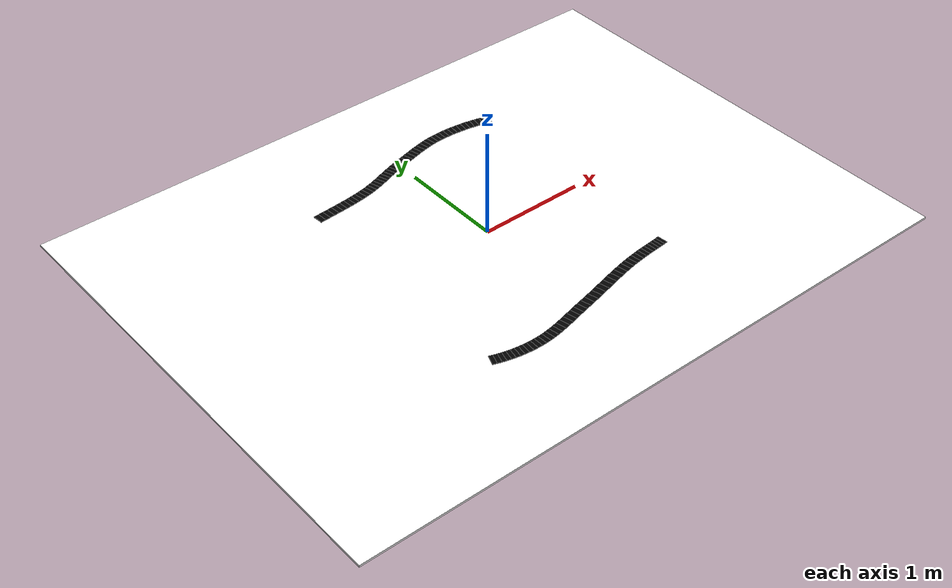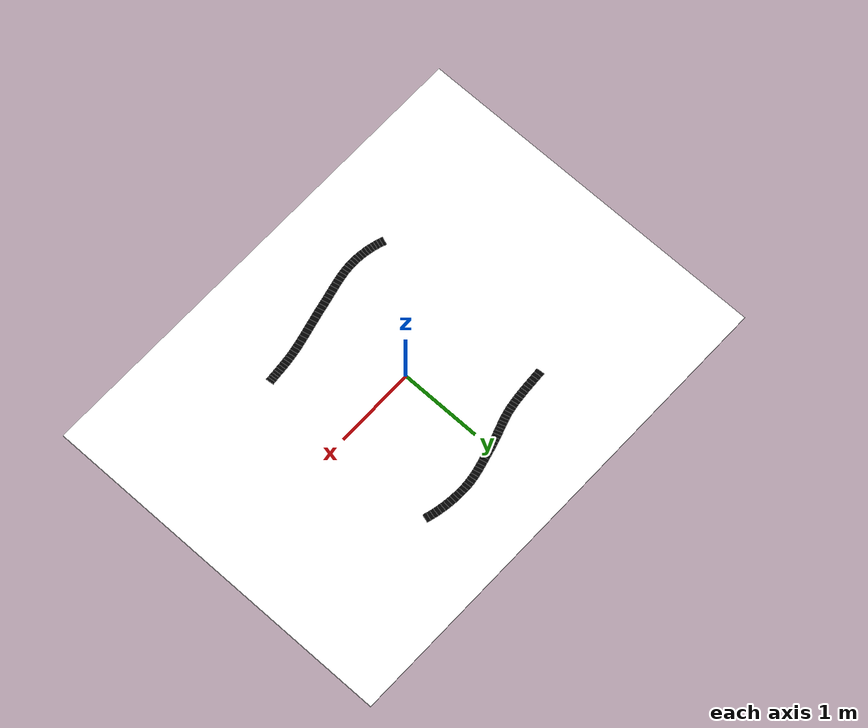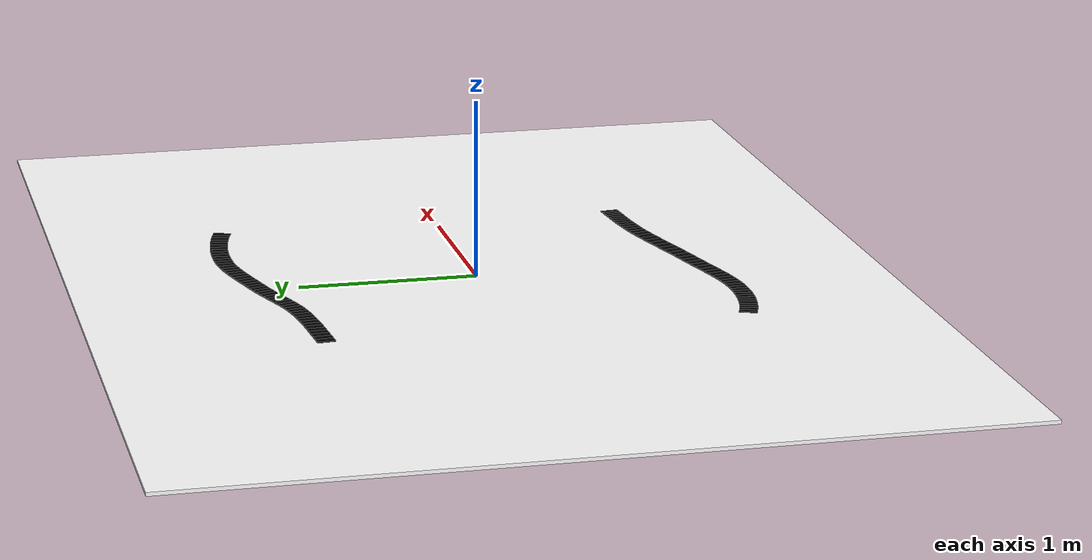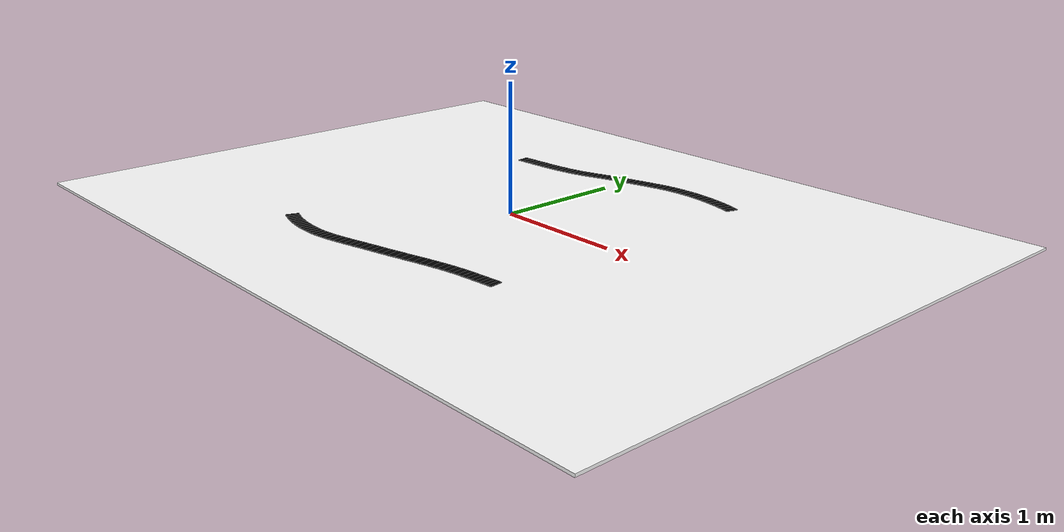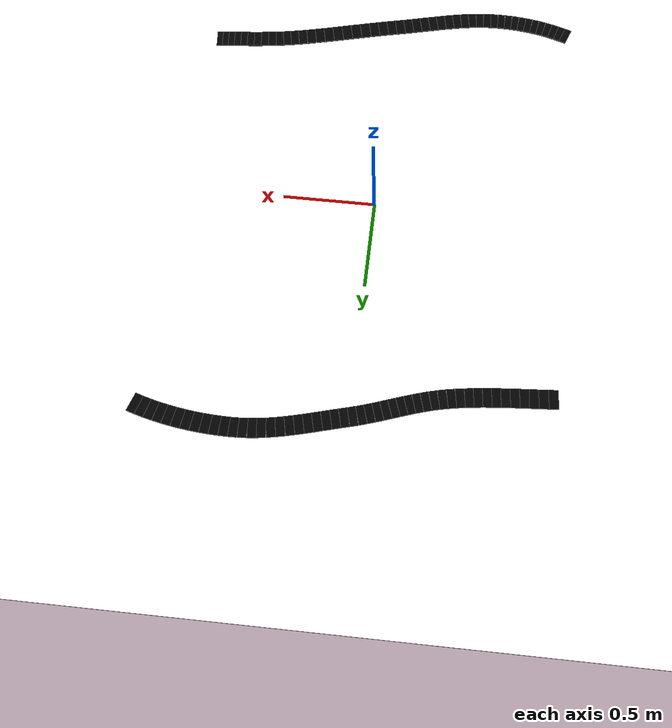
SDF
<sdf version="1.6">
 <world name="camera_line_following_world">
  <include><uri>model://sun</uri></include>
  <model name="white_ground">
   <static>true</static>
   <link name="ground_link">
    <collision name="ground_collision">
     <geometry><box><size>6.0 4.5 0.02</size></box></geometry>
     <surface><friction><ode><mu>1.4</mu><mu2>1.4</mu2></ode></friction></surface>
    </collision>
    <visual name="ground_visual">
     <geometry><box><size>6.0 4.5 0.02</size></box></geometry>
     <material><ambient>1 1 1 1</ambient><diffuse>1 1 1 1</diffuse><specular>0.05 0.05 0.05 1</specular></material>
    </visual>
   </link>
  </model>
  <model name="black_line_048">
   <static>true</static>
   <pose>1.056032 1.266648 0.018 0 0 2.840574</pose>
   <link name="line_link">
    <visual name="line_visual">
     <geometry><box><size>0.044957 0.100000 0.006</size></box></geometry>
     <material><ambient>0 0 0 1</ambient><diffuse>0 0 0 1</diffuse><specular>0 0 0 1</specular></material>
    </visual>
   </link>
  </model>
  <model name="black_line_049">
   <static>true</static>
   <pose>1.012552 1.279383 0.018 0 0 2.872519</pose>
   <link name="line_link">
    <visual name="line_visual">
     <geometry><box><size>0.045668 0.100000 0.006</size></box></geometry>
     <material><ambient>0 0 0 1</ambient><diffuse>0 0 0 1</diffuse><specular>0 0 0 1</specular></material>
    </visual>
   </link>
  </model>
  <model name="black_line_050">
   <static>true</static>
   <pose>0.968071 1.290921 0.018 0 0 2.902877</pose>
   <link name="line_link">
    <visual name="line_visual">
     <geometry><box><size>0.046249 0.100000 0.006</size></box></geometry>
     <material><ambient>0 0 0 1</ambient><diffuse>0 0 0 1</diffuse><specular>0 0 0 1</specular></material>
    </visual>
   </link>
  </model>
  <model name="black_line_051">
   <static>true</static>
   <pose>0.922764 1.301248 0.018 0 0 2.931989</pose>
   <link name="line_link">
    <visual name="line_visual">
     <geometry><box><size>0.046698 0.100000 0.006</size></box></geometry>
     <material><ambient>0 0 0 1</ambient><diffuse>0 0 0 1</diffuse><specular>0 0 0 1</specular></material>
    </visual>
   </link>
  </model>
  <model name="black_line_052">
   <static>true</static>
   <pose>0.876806 1.310347 0.018 0 0 2.960165</pose>
   <link name="line_link">
    <visual name="line_visual">
     <geometry><box><size>0.047011 0.100000 0.006</size></box></geometry>
     <material><ambient>0 0 0 1</ambient><diffuse>0 0 0 1</diffuse><specular>0 0 0 1</specular></material>
    </visual>
   </link>
  </model>
  <model name="black_line_053">
   <static>true</static>
   <pose>0.830372 1.318205 0.018 0 0 2.987692</pose>
   <link name="line_link">
    <visual name="line_visual">
     <geometry><box><size>0.047186 0.100000 0.006</size></box></geometry>
     <material><ambient>0 0 0 1</ambient><diffuse>0 0 0 1</diffuse><specular>0 0 0 1</specular></material>
    </visual>
   </link>
  </model>
  <model name="black_line_054">
   <static>true</static>
   <pose>0.783636 1.324806 0.018 0 0 3.014841</pose>
   <link name="line_link">
    <visual name="line_visual">
     <geometry><box><size>0.047221 0.100000 0.006</size></box></geometry>
     <material><ambient>0 0 0 1</ambient><diffuse>0 0 0 1</diffuse><specular>0 0 0 1</specular></material>
    </visual>
   </link>
  </model>
  <model name="black_line_055">
   <static>true</static>
   <pose>0.736775 1.330136 0.018 0 0 3.041876</pose>
   <link name="line_link">
    <visual name="line_visual">
     <geometry><box><size>0.047115 0.100000 0.006</size></box></geometry>
     <material><ambient>0 0 0 1</ambient><diffuse>0 0 0 1</diffuse><specular>0 0 0 1</specular></material>
    </visual>
   </link>
  </model>
  <model name="black_line_056">
   <static>true</static>
   <pose>0.689963 1.334180 0.018 0 0 3.069061</pose>
   <link name="line_link">
    <visual name="line_visual">
     <geometry><box><size>0.046867 0.100000 0.006</size></box></geometry>
     <material><ambient>0 0 0 1</ambient><diffuse>0 0 0 1</diffuse><specular>0 0 0 1</specular></material>
    </visual>
   </link>
  </model>
  <model name="black_line_057">
   <static>true</static>
   <pose>0.643375 1.336921 0.018 0 0 3.096665</pose>
   <link name="line_link">
    <visual name="line_visual">
     <geometry><box><size>0.046480 0.100000 0.006</size></box></geometry>
     <material><ambient>0 0 0 1</ambient><diffuse>0 0 0 1</diffuse><specular>0 0 0 1</specular></material>
    </visual>
   </link>
  </model>
  <model name="black_line_058">
   <static>true</static>
   <pose>0.597185 1.338347 0.018 0 0 3.124972</pose>
   <link name="line_link">
    <visual name="line_visual">
     <geometry><box><size>0.045953 0.100000 0.006</size></box></geometry>
     <material><ambient>0 0 0 1</ambient><diffuse>0 0 0 1</diffuse><specular>0 0 0 1</specular></material>
    </visual>
   </link>
  </model>
  <model name="black_line_059">
   <static>true</static>
   <pose>0.551570 1.338442 0.018 0 0 -3.128896</pose>
   <link name="line_link">
    <visual name="line_visual">
     <geometry><box><size>0.045289 0.100000 0.006</size></box></geometry>
     <material><ambient>0 0 0 1</ambient><diffuse>0 0 0 1</diffuse><specular>0 0 0 1</specular></material>
    </visual>
   </link>
  </model>
  <model name="black_line_060">
   <static>true</static>
   <pose>0.506457 1.336964 0.018 0 0 -3.088704</pose>
   <link name="line_link">
    <visual name="line_visual">
     <geometry><box><size>0.045003 0.100000 0.006</size></box></geometry>
     <material><ambient>0 0 0 1</ambient><diffuse>0 0 0 1</diffuse><specular>0 0 0 1</specular></material>
    </visual>
   </link>
  </model>
  <model name="black_line_061">
   <static>true</static>
   <pose>0.461493 1.333543 0.018 0 0 -3.042713</pose>
   <link name="line_link">
    <visual name="line_visual">
     <geometry><box><size>0.045209 0.100000 0.006</size></box></geometry>
     <material><ambient>0 0 0 1</ambient><diffuse>0 0 0 1</diffuse><specular>0 0 0 1</specular></material>
    </visual>
   </link>
  </model>
  <model name="black_line_062">
   <static>true</static>
   <pose>0.416512 1.328170 0.018 0 0 -3.002777</pose>
   <link name="line_link">
    <visual name="line_visual">
     <geometry><box><size>0.045411 0.100000 0.006</size></box></geometry>
     <material><ambient>0 0 0 1</ambient><diffuse>0 0 0 1</diffuse><specular>0 0 0 1</specular></material>
    </visual>
   </link>
  </model>
  <model name="black_line_063">
   <static>true</static>
   <pose>0.371575 1.321108 0.018 0 0 -2.968705</pose>
   <link name="line_link">
    <visual name="line_visual">
     <geometry><box><size>0.045579 0.100000 0.006</size></box></geometry>
     <material><ambient>0 0 0 1</ambient><diffuse>0 0 0 1</diffuse><specular>0 0 0 1</specular></material>
    </visual>
   </link>
  </model>
  <model name="black_line_064">
   <static>true</static>
   <pose>0.326744 1.312620 0.018 0 0 -2.940287</pose>
   <link name="line_link">
    <visual name="line_visual">
     <geometry><box><size>0.045685 0.100000 0.006</size></box></geometry>
     <material><ambient>0 0 0 1</ambient><diffuse>0 0 0 1</diffuse><specular>0 0 0 1</specular></material>
    </visual>
   </link>
  </model>
  <model name="black_line_065">
   <static>true</static>
   <pose>0.282081 1.302970 0.018 0 0 -2.917329</pose>
   <link name="line_link">
    <visual name="line_visual">
     <geometry><box><size>0.045710 0.100000 0.006</size></box></geometry>
     <material><ambient>0 0 0 1</ambient><diffuse>0 0 0 1</diffuse><specular>0 0 0 1</specular></material>
    </visual>
   </link>
  </model>
  <model name="black_line_066">
   <static>true</static>
   <pose>0.237645 1.292421 0.018 0 0 -2.899673</pose>
   <link name="line_link">
    <visual name="line_visual">
     <geometry><box><size>0.045635 0.100000 0.006</size></box></geometry>
     <material><ambient>0 0 0 1</ambient><diffuse>0 0 0 1</diffuse><specular>0 0 0 1</specular></material>
    </visual>
   </link>
  </model>
  <model name="black_line_067">
   <static>true</static>
   <pose>0.193500 1.281237 0.018 0 0 -2.887217</pose>
   <link name="line_link">
    <visual name="line_visual">
     <geometry><box><size>0.045448 0.100000 0.006</size></box></geometry>
     <material><ambient>0 0 0 1</ambient><diffuse>0 0 0 1</diffuse><specular>0 0 0 1</specular></material>
    </visual>
   </link>
  </model>
  <model name="black_line_068">
   <static>true</static>
   <pose>0.149706 1.269680 0.018 0 0 -2.879929</pose>
   <link name="line_link">
    <visual name="line_visual">
     <geometry><box><size>0.045140 0.100000 0.006</size></box></geometry>
     <material><ambient>0 0 0 1</ambient><diffuse>0 0 0 1</diffuse><specular>0 0 0 1</specular></material>
    </visual>
   </link>
  </model>
  <model name="black_line_069">
   <static>true</static>
   <pose>0.106324 1.258014 0.018 0 0 -2.877855</pose>
   <link name="line_link">
    <visual name="line_visual">
     <geometry><box><size>0.044706 0.100000 0.006</size></box></geometry>
     <material><ambient>0 0 0 1</ambient><diffuse>0 0 0 1</diffuse><specular>0 0 0 1</specular></material>
    </visual>
   </link>
  </model>
  <model name="black_line_070">
   <static>true</static>
   <pose>0.063417 1.246503 0.018 0 0 -2.881130</pose>
   <link name="line_link">
    <visual name="line_visual">
     <geometry><box><size>0.044144 0.100000 0.006</size></box></geometry>
     <material><ambient>0 0 0 1</ambient><diffuse>0 0 0 1</diffuse><specular>0 0 0 1</specular></material>
    </visual>
   </link>
  </model>
  <model name="black_line_071">
   <static>true</static>
   <pose>0.021045 1.235409 0.018 0 0 -2.889992</pose>
   <link name="line_link">
    <visual name="line_visual">
     <geometry><box><size>0.043457 0.100000 0.006</size></box></geometry>
     <material><ambient>0 0 0 1</ambient><diffuse>0 0 0 1</diffuse><specular>0 0 0 1</specular></material>
    </visual>
   </link>
  </model>
  <model name="black_line_072">
   <static>true</static>
   <pose>-0.020591 1.224512 0.018 0 0 -2.881138</pose>
   <link name="line_link">
    <visual name="line_visual">
     <geometry><box><size>0.042619 0.100000 0.006</size></box></geometry>
     <material><ambient>0 0 0 1</ambient><diffuse>0 0 0 1</diffuse><specular>0 0 0 1</specular></material>
    </visual>
   </link>
  </model>
  <model name="black_line_073">
   <static>true</static>
   <pose>-0.061244 1.213091 0.018 0 0 -2.854010</pose>
   <link name="line_link">
    <visual name="line_visual">
     <geometry><box><size>0.041843 0.100000 0.006</size></box></geometry>
     <material><ambient>0 0 0 1</ambient><diffuse>0 0 0 1</diffuse><specular>0 0 0 1</specular></material>
    </visual>
   </link>
  </model>
  <model name="black_line_074">
   <static>true</static>
   <pose>-0.100953 1.200885 0.018 0 0 -2.832583</pose>
   <link name="line_link">
    <visual name="line_visual">
     <geometry><box><size>0.041246 0.100000 0.006</size></box></geometry>
     <material><ambient>0 0 0 1</ambient><diffuse>0 0 0 1</diffuse><specular>0 0 0 1</specular></material>
    </visual>
   </link>
  </model>
  <model name="black_line_075">
   <static>true</static>
   <pose>-0.139942 1.188112 0.018 0 0 -2.817368</pose>
   <link name="line_link">
    <visual name="line_visual">
     <geometry><box><size>0.040812 0.100000 0.006</size></box></geometry>
     <material><ambient>0 0 0 1</ambient><diffuse>0 0 0 1</diffuse><specular>0 0 0 1</specular></material>
    </visual>
   </link>
  </model>
  <model name="black_line_076">
   <static>true</static>
   <pose>-0.178437 1.174990 0.018 0 0 -2.808738</pose>
   <link name="line_link">
    <visual name="line_visual">
     <geometry><box><size>0.040528 0.100000 0.006</size></box></geometry>
     <material><ambient>0 0 0 1</ambient><diffuse>0 0 0 1</diffuse><specular>0 0 0 1</specular></material>
    </visual>
   </link>
  </model>
  <model name="black_line_077">
   <static>true</static>
   <pose>-0.216662 1.161736 0.018 0 0 -2.806926</pose>
   <link name="line_link">
    <visual name="line_visual">
     <geometry><box><size>0.040388 0.100000 0.006</size></box></geometry>
     <material><ambient>0 0 0 1</ambient><diffuse>0 0 0 1</diffuse><specular>0 0 0 1</specular></material>
    </visual>
   </link>
  </model>
  <model name="black_line_078">
   <static>true</static>
   <pose>-0.254843 1.148568 0.018 0 0 -2.812023</pose>
   <link name="line_link">
    <visual name="line_visual">
     <geometry><box><size>0.040389 0.100000 0.006</size></box></geometry>
     <material><ambient>0 0 0 1</ambient><diffuse>0 0 0 1</diffuse><specular>0 0 0 1</specular></material>
    </visual>
   </link>
  </model>
  <model name="black_line_079">
   <static>true</static>
   <pose>-0.293205 1.135702 0.018 0 0 -2.823974</pose>
   <link name="line_link">
    <visual name="line_visual">
     <geometry><box><size>0.040536 0.100000 0.006</size></box></geometry>
     <material><ambient>0 0 0 1</ambient><diffuse>0 0 0 1</diffuse><specular>0 0 0 1</specular></material>
    </visual>
   </link>
  </model>
  <model name="black_line_080">
   <static>true</static>
   <pose>-0.331972 1.123357 0.018 0 0 -2.842572</pose>
   <link name="line_link">
    <visual name="line_visual">
     <geometry><box><size>0.040839 0.100000 0.006</size></box></geometry>
     <material><ambient>0 0 0 1</ambient><diffuse>0 0 0 1</diffuse><specular>0 0 0 1</specular></material>
    </visual>
   </link>
  </model>
  <model name="black_line_081">
   <static>true</static>
   <pose>-0.371371 1.111750 0.018 0 0 -2.867456</pose>
   <link name="line_link">
    <visual name="line_visual">
     <geometry><box><size>0.041313 0.100000 0.006</size></box></geometry>
     <material><ambient>0 0 0 1</ambient><diffuse>0 0 0 1</diffuse><specular>0 0 0 1</specular></material>
    </visual>
   </link>
  </model>
  <model name="black_line_082">
   <static>true</static>
   <pose>-0.411625 1.101098 0.018 0 0 -2.898106</pose>
   <link name="line_link">
    <visual name="line_visual">
     <geometry><box><size>0.041977 0.100000 0.006</size></box></geometry>
     <material><ambient>0 0 0 1</ambient><diffuse>0 0 0 1</diffuse><specular>0 0 0 1</specular></material>
    </visual>
   </link>
  </model>
  <model name="black_line_083">
   <static>true</static>
   <pose>-0.452961 1.091619 0.018 0 0 -2.933846</pose>
   <link name="line_link">
    <visual name="line_visual">
     <geometry><box><size>0.042854 0.100000 0.006</size></box></geometry>
     <material><ambient>0 0 0 1</ambient><diffuse>0 0 0 1</diffuse><specular>0 0 0 1</specular></material>
    </visual>
   </link>
  </model>
  <model name="black_line_084">
   <static>true</static>
   <pose>-0.495344 1.083404 0.018 0 0 -2.966202</pose>
   <link name="line_link">
    <visual name="line_visual">
     <geometry><box><size>0.043501 0.100000 0.006</size></box></geometry>
     <material><ambient>0 0 0 1</ambient><diffuse>0 0 0 1</diffuse><specular>0 0 0 1</specular></material>
    </visual>
   </link>
  </model>
  <model name="black_line_085">
   <static>true</static>
   <pose>-0.538413 1.076308 0.018 0 0 -2.990327</pose>
   <link name="line_link">
    <visual name="line_visual">
     <geometry><box><size>0.043805 0.100000 0.006</size></box></geometry>
     <material><ambient>0 0 0 1</ambient><diffuse>0 0 0 1</diffuse><specular>0 0 0 1</specular></material>
    </visual>
   </link>
  </model>
  <model name="black_line_086">
   <static>true</static>
   <pose>-0.581961 1.070142 0.018 0 0 -3.011453</pose>
   <link name="line_link">
    <visual name="line_visual">
     <geometry><box><size>0.044164 0.100000 0.006</size></box></geometry>
     <material><ambient>0 0 0 1</ambient><diffuse>0 0 0 1</diffuse><specular>0 0 0 1</specular></material>
    </visual>
   </link>
  </model>
  <model name="black_line_087">
   <static>true</static>
   <pose>-0.626003 1.064785 0.018 0 0 -3.029585</pose>
   <link name="line_link">
    <visual name="line_visual">
     <geometry><box><size>0.044573 0.100000 0.006</size></box></geometry>
     <material><ambient>0 0 0 1</ambient><diffuse>0 0 0 1</diffuse><specular>0 0 0 1</specular></material>
    </visual>
   </link>
  </model>
  <model name="black_line_088">
   <static>true</static>
   <pose>-0.670556 1.060118 0.018 0 0 -3.044758</pose>
   <link name="line_link">
    <visual name="line_visual">
     <geometry><box><size>0.045023 0.100000 0.006</size></box></geometry>
     <material><ambient>0 0 0 1</ambient><diffuse>0 0 0 1</diffuse><specular>0 0 0 1</specular></material>
    </visual>
   </link>
  </model>
  <model name="black_line_089">
   <static>true</static>
   <pose>-0.715634 1.056019 0.018 0 0 -3.057021</pose>
   <link name="line_link">
    <visual name="line_visual">
     <geometry><box><size>0.045509 0.100000 0.006</size></box></geometry>
     <material><ambient>0 0 0 1</ambient><diffuse>0 0 0 1</diffuse><specular>0 0 0 1</specular></material>
    </visual>
   </link>
  </model>
  <model name="black_line_090">
   <static>true</static>
   <pose>-0.761256 1.052369 0.018 0 0 -3.066444</pose>
   <link name="line_link">
    <visual name="line_visual">
     <geometry><box><size>0.046026 0.100000 0.006</size></box></geometry>
     <material><ambient>0 0 0 1</ambient><diffuse>0 0 0 1</diffuse><specular>0 0 0 1</specular></material>
    </visual>
   </link>
  </model>
  <model name="black_line_091">
   <static>true</static>
   <pose>-0.807435 1.049048 0.018 0 0 -3.073102</pose>
   <link name="line_link">
    <visual name="line_visual">
     <geometry><box><size>0.046572 0.100000 0.006</size></box></geometry>
     <material><ambient>0 0 0 1</ambient><diffuse>0 0 0 1</diffuse><specular>0 0 0 1</specular></material>
    </visual>
   </link>
  </model>
  <model name="black_line_092">
   <static>true</static>
   <pose>-0.854189 1.045935 0.018 0 0 -3.077081</pose>
   <link name="line_link">
    <visual name="line_visual">
     <geometry><box><size>0.047143 0.100000 0.006</size></box></geometry>
     <material><ambient>0 0 0 1</ambient><diffuse>0 0 0 1</diffuse><specular>0 0 0 1</specular></material>
    </visual>
   </link>
  </model>
  <model name="black_line_093">
   <static>true</static>
   <pose>-0.901533 1.042909 0.018 0 0 -3.078471</pose>
   <link name="line_link">
    <visual name="line_visual">
     <geometry><box><size>0.047738 0.100000 0.006</size></box></geometry>
     <material><ambient>0 0 0 1</ambient><diffuse>0 0 0 1</diffuse><specular>0 0 0 1</specular></material>
    </visual>
   </link>
  </model>
  <model name="black_line_094">
   <static>true</static>
   <pose>-0.949483 1.039852 0.018 0 0 -3.077365</pose>
   <link name="line_link">
    <visual name="line_visual">
     <geometry><box><size>0.048357 0.100000 0.006</size></box></geometry>
     <material><ambient>0 0 0 1</ambient><diffuse>0 0 0 1</diffuse><specular>0 0 0 1</specular></material>
    </visual>
   </link>
  </model>
  <model name="black_line_095">
   <static>true</static>
   <pose>-0.998056 1.036642 0.018 0 0 -3.073859</pose>
   <link name="line_link">
    <visual name="line_visual">
     <geometry><box><size>0.049000 0.100000 0.006</size></box></geometry>
     <material><ambient>0 0 0 1</ambient><diffuse>0 0 0 1</diffuse><specular>0 0 0 1</specular></material>
    </visual>
   </link>
  </model>
  <model name="black_line_192">
   <static>true</static>
   <pose>-1.004384 -1.266648 0.018 0 0 -0.352534</pose>
   <link name="line_link">
    <visual name="line_visual">
     <geometry><box><size>0.038605 0.100000 0.006</size></box></geometry>
     <material><ambient>0 0 0 1</ambient><diffuse>0 0 0 1</diffuse><specular>0 0 0 1</specular></material>
    </visual>
   </link>
  </model>
  <model name="black_line_193">
   <static>true</static>
   <pose>-0.968021 -1.279383 0.018 0 0 -0.321130</pose>
   <link name="line_link">
    <visual name="line_visual">
     <geometry><box><size>0.038462 0.100000 0.006</size></box></geometry>
     <material><ambient>0 0 0 1</ambient><diffuse>0 0 0 1</diffuse><specular>0 0 0 1</specular></material>
    </visual>
   </link>
  </model>
  <model name="black_line_194">
   <static>true</static>
   <pose>-0.931365 -1.290921 0.018 0 0 -0.288740</pose>
   <link name="line_link">
    <visual name="line_visual">
     <geometry><box><size>0.038406 0.100000 0.006</size></box></geometry>
     <material><ambient>0 0 0 1</ambient><diffuse>0 0 0 1</diffuse><specular>0 0 0 1</specular></material>
    </visual>
   </link>
  </model>
  <model name="black_line_195">
   <static>true</static>
   <pose>-0.894361 -1.301248 0.018 0 0 -0.255549</pose>
   <link name="line_link">
    <visual name="line_visual">
     <geometry><box><size>0.038440 0.100000 0.006</size></box></geometry>
     <material><ambient>0 0 0 1</ambient><diffuse>0 0 0 1</diffuse><specular>0 0 0 1</specular></material>
    </visual>
   </link>
  </model>
  <model name="black_line_196">
   <static>true</static>
   <pose>-0.856955 -1.310347 0.018 0 0 -0.221760</pose>
   <link name="line_link">
    <visual name="line_visual">
     <geometry><box><size>0.038566 0.100000 0.006</size></box></geometry>
     <material><ambient>0 0 0 1</ambient><diffuse>0 0 0 1</diffuse><specular>0 0 0 1</specular></material>
    </visual>
   </link>
  </model>
  <model name="black_line_197">
   <static>true</static>
   <pose>-0.819090 -1.318205 0.018 0 0 -0.187585</pose>
   <link name="line_link">
    <visual name="line_visual">
     <geometry><box><size>0.038787 0.100000 0.006</size></box></geometry>
     <material><ambient>0 0 0 1</ambient><diffuse>0 0 0 1</diffuse><specular>0 0 0 1</specular></material>
    </visual>
   </link>
  </model>
  <model name="black_line_198">
   <static>true</static>
   <pose>-0.780713 -1.324806 0.018 0 0 -0.153244</pose>
   <link name="line_link">
    <visual name="line_visual">
     <geometry><box><size>0.039106 0.100000 0.006</size></box></geometry>
     <material><ambient>0 0 0 1</ambient><diffuse>0 0 0 1</diffuse><specular>0 0 0 1</specular></material>
    </visual>
   </link>
  </model>
  <model name="black_line_199">
   <static>true</static>
   <pose>-0.741768 -1.330136 0.018 0 0 -0.118955</pose>
   <link name="line_link">
    <visual name="line_visual">
     <geometry><box><size>0.039523 0.100000 0.006</size></box></geometry>
     <material><ambient>0 0 0 1</ambient><diffuse>0 0 0 1</diffuse><specular>0 0 0 1</specular></material>
    </visual>
   </link>
  </model>
  <model name="black_line_200">
   <static>true</static>
   <pose>-0.702199 -1.334180 0.018 0 0 -0.084930</pose>
   <link name="line_link">
    <visual name="line_visual">
     <geometry><box><size>0.040038 0.100000 0.006</size></box></geometry>
     <material><ambient>0 0 0 1</ambient><diffuse>0 0 0 1</diffuse><specular>0 0 0 1</specular></material>
    </visual>
   </link>
  </model>
  <model name="black_line_201">
   <static>true</static>
   <pose>-0.661952 -1.336921 0.018 0 0 -0.051372</pose>
   <link name="line_link">
    <visual name="line_visual">
     <geometry><box><size>0.040654 0.100000 0.006</size></box></geometry>
     <material><ambient>0 0 0 1</ambient><diffuse>0 0 0 1</diffuse><specular>0 0 0 1</specular></material>
    </visual>
   </link>
  </model>
  <model name="black_line_202">
   <static>true</static>
   <pose>-0.620971 -1.338347 0.018 0 0 -0.018463</pose>
   <link name="line_link">
    <visual name="line_visual">
     <geometry><box><size>0.041368 0.100000 0.006</size></box></geometry>
     <material><ambient>0 0 0 1</ambient><diffuse>0 0 0 1</diffuse><specular>0 0 0 1</specular></material>
    </visual>
   </link>
  </model>
  <model name="black_line_203">
   <static>true</static>
   <pose>-0.579202 -1.338442 0.018 0 0 0.013631</pose>
   <link name="line_link">
    <visual name="line_visual">
     <geometry><box><size>0.042182 0.100000 0.006</size></box></geometry>
     <material><ambient>0 0 0 1</ambient><diffuse>0 0 0 1</diffuse><specular>0 0 0 1</specular></material>
    </visual>
   </link>
  </model>
  <model name="black_line_204">
   <static>true</static>
   <pose>-0.536586 -1.336964 0.018 0 0 0.055203</pose>
   <link name="line_link">
    <visual name="line_visual">
     <geometry><box><size>0.043119 0.100000 0.006</size></box></geometry>
     <material><ambient>0 0 0 1</ambient><diffuse>0 0 0 1</diffuse><specular>0 0 0 1</specular></material>
    </visual>
   </link>
  </model>
  <model name="black_line_205">
   <static>true</static>
   <pose>-0.493107 -1.333543 0.018 0 0 0.101301</pose>
   <link name="line_link">
    <visual name="line_visual">
     <geometry><box><size>0.044132 0.100000 0.006</size></box></geometry>
     <material><ambient>0 0 0 1</ambient><diffuse>0 0 0 1</diffuse><specular>0 0 0 1</specular></material>
    </visual>
   </link>
  </model>
  <model name="black_line_206">
   <static>true</static>
   <pose>-0.448809 -1.328170 0.018 0 0 0.139685</pose>
   <link name="line_link">
    <visual name="line_visual">
     <geometry><box><size>0.045130 0.100000 0.006</size></box></geometry>
     <material><ambient>0 0 0 1</ambient><diffuse>0 0 0 1</diffuse><specular>0 0 0 1</specular></material>
    </visual>
   </link>
  </model>
  <model name="black_line_207">
   <static>true</static>
   <pose>-0.403759 -1.321108 0.018 0 0 0.170985</pose>
   <link name="line_link">
    <visual name="line_visual">
     <geometry><box><size>0.046081 0.100000 0.006</size></box></geometry>
     <material><ambient>0 0 0 1</ambient><diffuse>0 0 0 1</diffuse><specular>0 0 0 1</specular></material>
    </visual>
   </link>
  </model>
  <model name="black_line_208">
   <static>true</static>
   <pose>-0.358025 -1.312620 0.018 0 0 0.195782</pose>
   <link name="line_link">
    <visual name="line_visual">
     <geometry><box><size>0.046957 0.100000 0.006</size></box></geometry>
     <material><ambient>0 0 0 1</ambient><diffuse>0 0 0 1</diffuse><specular>0 0 0 1</specular></material>
    </visual>
   </link>
  </model>
  <model name="black_line_209">
   <static>true</static>
   <pose>-0.311674 -1.302970 0.018 0 0 0.214581</pose>
   <link name="line_link">
    <visual name="line_visual">
     <geometry><box><size>0.047738 0.100000 0.006</size></box></geometry>
     <material><ambient>0 0 0 1</ambient><diffuse>0 0 0 1</diffuse><specular>0 0 0 1</specular></material>
    </visual>
   </link>
  </model>
  <model name="black_line_210">
   <static>true</static>
   <pose>-0.264772 -1.292421 0.018 0 0 0.227796</pose>
   <link name="line_link">
    <visual name="line_visual">
     <geometry><box><size>0.048410 0.100000 0.006</size></box></geometry>
     <material><ambient>0 0 0 1</ambient><diffuse>0 0 0 1</diffuse><specular>0 0 0 1</specular></material>
    </visual>
   </link>
  </model>
  <model name="black_line_211">
   <static>true</static>
   <pose>-0.217388 -1.281237 0.018 0 0 0.235750</pose>
   <link name="line_link">
    <visual name="line_visual">
     <geometry><box><size>0.048963 0.100000 0.006</size></box></geometry>
     <material><ambient>0 0 0 1</ambient><diffuse>0 0 0 1</diffuse><specular>0 0 0 1</specular></material>
    </visual>
   </link>
  </model>
  <model name="black_line_212">
   <static>true</static>
   <pose>-0.169588 -1.269680 0.018 0 0 0.238681</pose>
   <link name="line_link">
    <visual name="line_visual">
     <geometry><box><size>0.049391 0.100000 0.006</size></box></geometry>
     <material><ambient>0 0 0 1</ambient><diffuse>0 0 0 1</diffuse><specular>0 0 0 1</specular></material>
    </visual>
   </link>
  </model>
  <model name="black_line_213">
   <static>true</static>
   <pose>-0.121439 -1.258014 0.018 0 0 0.236739</pose>
   <link name="line_link">
    <visual name="line_visual">
     <geometry><box><size>0.049692 0.100000 0.006</size></box></geometry>
     <material><ambient>0 0 0 1</ambient><diffuse>0 0 0 1</diffuse><specular>0 0 0 1</specular></material>
    </visual>
   </link>
  </model>
  <model name="black_line_214">
   <static>true</static>
   <pose>-0.073010 -1.246503 0.018 0 0 0.229998</pose>
   <link name="line_link">
    <visual name="line_visual">
     <geometry><box><size>0.049866 0.100000 0.006</size></box></geometry>
     <material><ambient>0 0 0 1</ambient><diffuse>0 0 0 1</diffuse><specular>0 0 0 1</specular></material>
    </visual>
   </link>
  </model>
  <model name="black_line_215">
   <static>true</static>
   <pose>-0.024367 -1.235409 0.018 0 0 0.218459</pose>
   <link name="line_link">
    <visual name="line_visual">
     <geometry><box><size>0.049920 0.100000 0.006</size></box></geometry>
     <material><ambient>0 0 0 1</ambient><diffuse>0 0 0 1</diffuse><specular>0 0 0 1</specular></material>
    </visual>
   </link>
  </model>
  <model name="black_line_216">
   <static>true</static>
   <pose>0.024820 -1.224512 0.018 0 0 0.217596</pose>
   <link name="line_link">
    <visual name="line_visual">
     <geometry><box><size>0.050839 0.100000 0.006</size></box></geometry>
     <material><ambient>0 0 0 1</ambient><diffuse>0 0 0 1</diffuse><specular>0 0 0 1</specular></material>
    </visual>
   </link>
  </model>
  <model name="black_line_217">
   <static>true</static>
   <pose>0.075182 -1.213091 0.018 0 0 0.228280</pose>
   <link name="line_link">
    <visual name="line_visual">
     <geometry><box><size>0.052444 0.100000 0.006</size></box></geometry>
     <material><ambient>0 0 0 1</ambient><diffuse>0 0 0 1</diffuse><specular>0 0 0 1</specular></material>
    </visual>
   </link>
  </model>
  <model name="black_line_218">
   <static>true</static>
   <pose>0.126810 -1.200885 0.018 0 0 0.235947</pose>
   <link name="line_link">
    <visual name="line_visual">
     <geometry><box><size>0.053660 0.100000 0.006</size></box></geometry>
     <material><ambient>0 0 0 1</ambient><diffuse>0 0 0 1</diffuse><specular>0 0 0 1</specular></material>
    </visual>
   </link>
  </model>
  <model name="black_line_219">
   <static>true</static>
   <pose>0.179351 -1.188112 0.018 0 0 0.240964</pose>
   <link name="line_link">
    <visual name="line_visual">
     <geometry><box><size>0.054483 0.100000 0.006</size></box></geometry>
     <material><ambient>0 0 0 1</ambient><diffuse>0 0 0 1</diffuse><specular>0 0 0 1</specular></material>
    </visual>
   </link>
  </model>
  <model name="black_line_220">
   <static>true</static>
   <pose>0.232450 -1.174990 0.018 0 0 0.243559</pose>
   <link name="line_link">
    <visual name="line_visual">
     <geometry><box><size>0.054911 0.100000 0.006</size></box></geometry>
     <material><ambient>0 0 0 1</ambient><diffuse>0 0 0 1</diffuse><specular>0 0 0 1</specular></material>
    </visual>
   </link>
  </model>
  <model name="black_line_221">
   <static>true</static>
   <pose>0.285755 -1.161736 0.018 0 0 0.243845</pose>
   <link name="line_link">
    <visual name="line_visual">
     <geometry><box><size>0.054944 0.100000 0.006</size></box></geometry>
     <material><ambient>0 0 0 1</ambient><diffuse>0 0 0 1</diffuse><specular>0 0 0 1</specular></material>
    </visual>
   </link>
  </model>
  <model name="black_line_222">
   <static>true</static>
   <pose>0.338911 -1.148568 0.018 0 0 0.241831</pose>
   <link name="line_link">
    <visual name="line_visual">
     <geometry><box><size>0.054581 0.100000 0.006</size></box></geometry>
     <material><ambient>0 0 0 1</ambient><diffuse>0 0 0 1</diffuse><specular>0 0 0 1</specular></material>
    </visual>
   </link>
  </model>
  <model name="black_line_223">
   <static>true</static>
   <pose>0.391565 -1.135702 0.018 0 0 0.237427</pose>
   <link name="line_link">
    <visual name="line_visual">
     <geometry><box><size>0.053824 0.100000 0.006</size></box></geometry>
     <material><ambient>0 0 0 1</ambient><diffuse>0 0 0 1</diffuse><specular>0 0 0 1</specular></material>
    </visual>
   </link>
  </model>
  <model name="black_line_224">
   <static>true</static>
   <pose>0.443362 -1.123357 0.018 0 0 0.230431</pose>
   <link name="line_link">
    <visual name="line_visual">
     <geometry><box><size>0.052674 0.100000 0.006</size></box></geometry>
     <material><ambient>0 0 0 1</ambient><diffuse>0 0 0 1</diffuse><specular>0 0 0 1</specular></material>
    </visual>
   </link>
  </model>
  <model name="black_line_225">
   <static>true</static>
   <pose>0.493950 -1.111750 0.018 0 0 0.220507</pose>
   <link name="line_link">
    <visual name="line_visual">
     <geometry><box><size>0.051133 0.100000 0.006</size></box></geometry>
     <material><ambient>0 0 0 1</ambient><diffuse>0 0 0 1</diffuse><specular>0 0 0 1</specular></material>
    </visual>
   </link>
  </model>
  <model name="black_line_226">
   <static>true</static>
   <pose>0.542975 -1.101098 0.018 0 0 0.207145</pose>
   <link name="line_link">
    <visual name="line_visual">
     <geometry><box><size>0.049206 0.100000 0.006</size></box></geometry>
     <material><ambient>0 0 0 1</ambient><diffuse>0 0 0 1</diffuse><specular>0 0 0 1</specular></material>
    </visual>
   </link>
  </model>
  <model name="black_line_227">
   <static>true</static>
   <pose>0.590083 -1.091619 0.018 0 0 0.189590</pose>
   <link name="line_link">
    <visual name="line_visual">
     <geometry><box><size>0.046901 0.100000 0.006</size></box></geometry>
     <material><ambient>0 0 0 1</ambient><diffuse>0 0 0 1</diffuse><specular>0 0 0 1</specular></material>
    </visual>
   </link>
  </model>
  <model name="black_line_228">
   <static>true</static>
   <pose>0.635427 -1.083404 0.018 0 0 0.168474</pose>
   <link name="line_link">
    <visual name="line_visual">
     <geometry><box><size>0.045269 0.100000 0.006</size></box></geometry>
     <material><ambient>0 0 0 1</ambient><diffuse>0 0 0 1</diffuse><specular>0 0 0 1</specular></material>
    </visual>
   </link>
  </model>
  <model name="black_line_229">
   <static>true</static>
   <pose>0.679743 -1.076308 0.018 0 0 0.148899</pose>
   <link name="line_link">
    <visual name="line_visual">
     <geometry><box><size>0.044495 0.100000 0.006</size></box></geometry>
     <material><ambient>0 0 0 1</ambient><diffuse>0 0 0 1</diffuse><specular>0 0 0 1</specular></material>
    </visual>
   </link>
  </model>
  <model name="black_line_230">
   <static>true</static>
   <pose>0.723365 -1.070142 0.018 0 0 0.131773</pose>
   <link name="line_link">
    <visual name="line_visual">
     <geometry><box><size>0.043620 0.100000 0.006</size></box></geometry>
     <material><ambient>0 0 0 1</ambient><diffuse>0 0 0 1</diffuse><specular>0 0 0 1</specular></material>
    </visual>
   </link>
  </model>
  <model name="black_line_231">
   <static>true</static>
   <pose>0.766159 -1.064785 0.018 0 0 0.117115</pose>
   <link name="line_link">
    <visual name="line_visual">
     <geometry><box><size>0.042637 0.100000 0.006</size></box></geometry>
     <material><ambient>0 0 0 1</ambient><diffuse>0 0 0 1</diffuse><specular>0 0 0 1</specular></material>
    </visual>
   </link>
  </model>
  <model name="black_line_232">
   <static>true</static>
   <pose>0.807987 -1.060118 0.018 0 0 0.104980</pose>
   <link name="line_link">
    <visual name="line_visual">
     <geometry><box><size>0.041541 0.100000 0.006</size></box></geometry>
     <material><ambient>0 0 0 1</ambient><diffuse>0 0 0 1</diffuse><specular>0 0 0 1</specular></material>
    </visual>
   </link>
  </model>
  <model name="black_line_233">
   <static>true</static>
   <pose>0.848715 -1.056019 0.018 0 0 0.095469</pose>
   <link name="line_link">
    <visual name="line_visual">
     <geometry><box><size>0.040327 0.100000 0.006</size></box></geometry>
     <material><ambient>0 0 0 1</ambient><diffuse>0 0 0 1</diffuse><specular>0 0 0 1</specular></material>
    </visual>
   </link>
  </model>
  <model name="black_line_234">
   <static>true</static>
   <pose>0.888207 -1.052369 0.018 0 0 0.088738</pose>
   <link name="line_link">
    <visual name="line_visual">
     <geometry><box><size>0.038992 0.100000 0.006</size></box></geometry>
     <material><ambient>0 0 0 1</ambient><diffuse>0 0 0 1</diffuse><specular>0 0 0 1</specular></material>
    </visual>
   </link>
  </model>
  <model name="black_line_235">
   <static>true</static>
   <pose>0.926325 -1.049048 0.018 0 0 0.085018</pose>
   <link name="line_link">
    <visual name="line_visual">
     <geometry><box><size>0.037534 0.100000 0.006</size></box></geometry>
     <material><ambient>0 0 0 1</ambient><diffuse>0 0 0 1</diffuse><specular>0 0 0 1</specular></material>
    </visual>
   </link>
  </model>
  <model name="black_line_236">
   <static>true</static>
   <pose>0.962936 -1.045935 0.018 0 0 0.084637</pose>
   <link name="line_link">
    <visual name="line_visual">
     <geometry><box><size>0.035951 0.100000 0.006</size></box></geometry>
     <material><ambient>0 0 0 1</ambient><diffuse>0 0 0 1</diffuse><specular>0 0 0 1</specular></material>
    </visual>
   </link>
  </model>
  <model name="black_line_237">
   <static>true</static>
   <pose>0.997903 -1.042909 0.018 0 0 0.088053</pose>
   <link name="line_link">
    <visual name="line_visual">
     <geometry><box><size>0.034243 0.100000 0.006</size></box></geometry>
     <material><ambient>0 0 0 1</ambient><diffuse>0 0 0 1</diffuse><specular>0 0 0 1</specular></material>
    </visual>
   </link>
  </model>
  <model name="black_line_238">
   <static>true</static>
   <pose>1.031089 -1.039852 0.018 0 0 0.095907</pose>
   <link name="line_link">
    <visual name="line_visual">
     <geometry><box><size>0.032412 0.100000 0.006</size></box></geometry>
     <material><ambient>0 0 0 1</ambient><diffuse>0 0 0 1</diffuse><specular>0 0 0 1</specular></material>
    </visual>
   </link>
  </model>
 </world>
</sdf>
